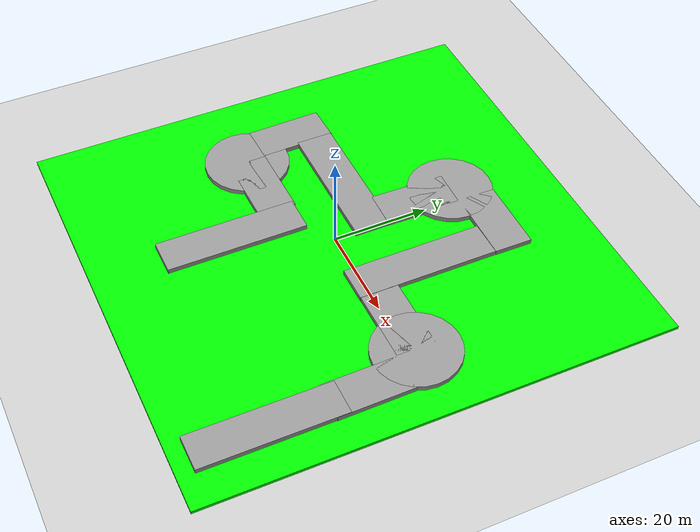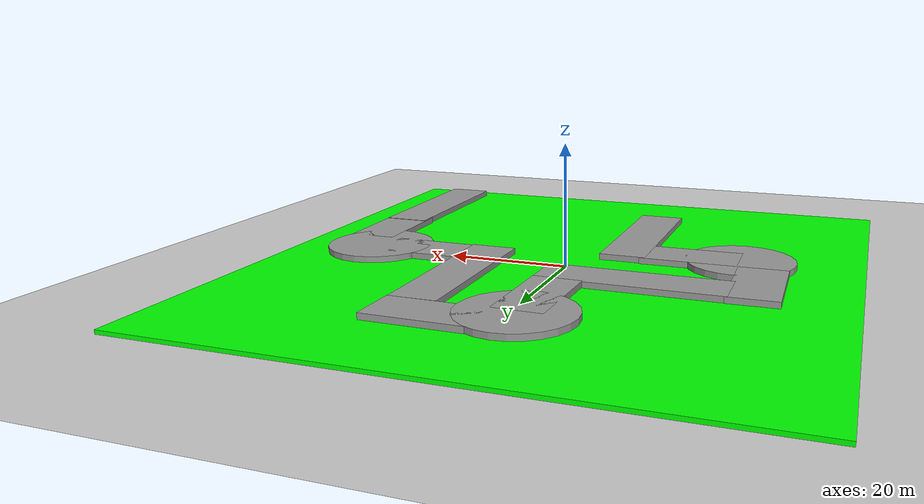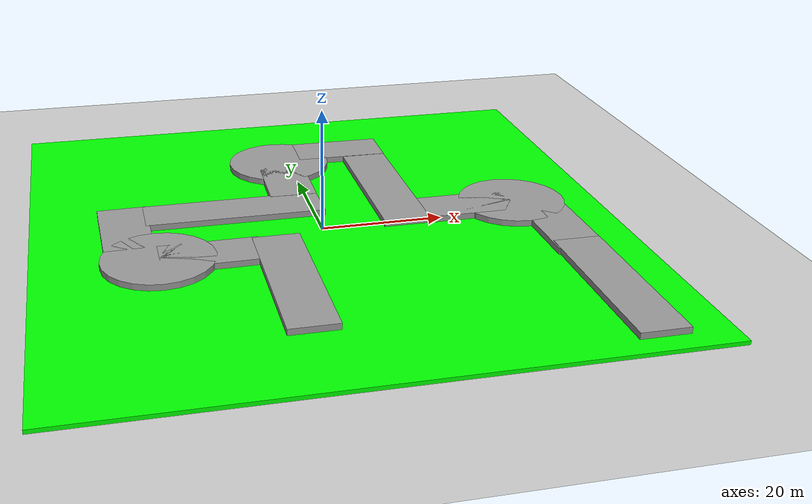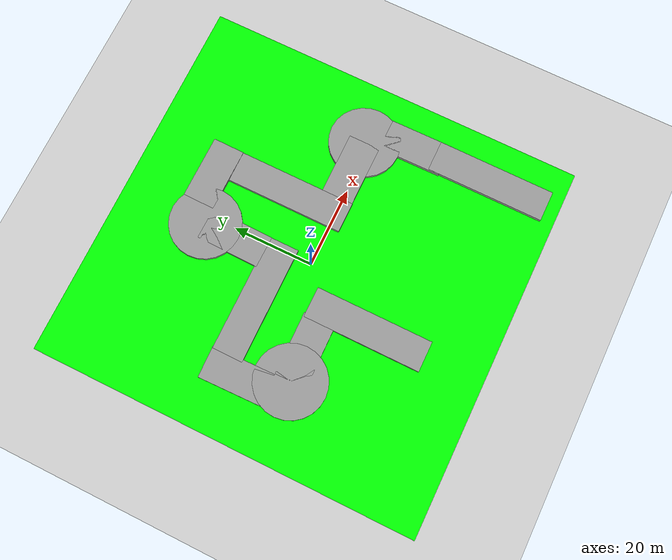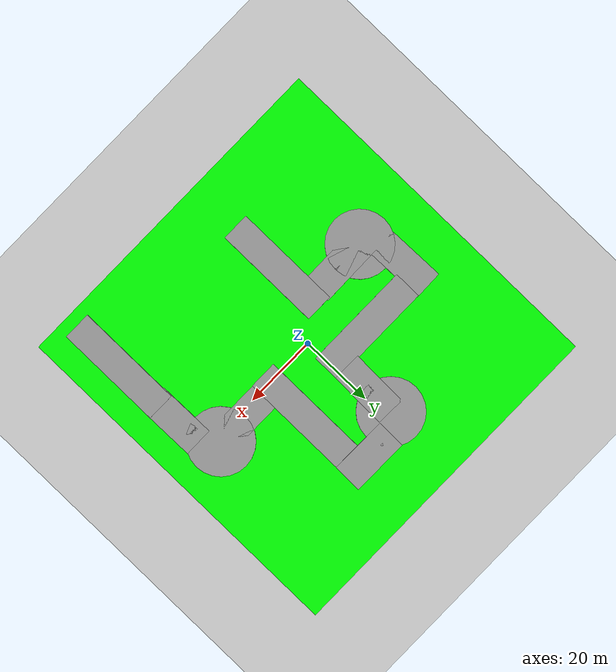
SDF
<sdf version="1.6">
 <world name="default">
  <light name="sun" type="directional">
   <pose>0 0 10 0 -0 0</pose>
   <diffuse>0.8 0.8 0.8 1</diffuse>
   <specular>0.2 0.2 0.2 1</specular>
   <attenuation>
    <range>1000</range>
    <constant>0.9</constant>
    <linear>0.01</linear>
    <quadratic>0.001</quadratic>
   </attenuation>
   <direction>-0.5 0.1 -0.9</direction>
  </light>
  <model name="ground_plane">
   <static>1</static>
   <link name="link">
    <collision name="collision">
     <geometry><plane><normal>0 0 1</normal><size>100 100</size></plane></geometry>
     <surface>
      <contact><collide_bitmask>65535</collide_bitmask></contact>
      <friction><ode><mu>100</mu><mu2>50</mu2></ode></friction>
     </surface>
    </collision>
    <visual name="visual">
     <cast_shadows>0</cast_shadows>
     <geometry><plane><normal>0 0 1</normal><size>100 100</size></plane></geometry>
     <material>
      <script><uri>file://media/materials/scripts/gazebo.material</uri><name>Gazebo/Grey</name></script>
     </material>
    </visual>
   </link>
  </model>
  <gravity>0 0 -9.8</gravity>
  <magnetic_field>6e-06 2.3e-05 -4.2e-05</magnetic_field>
  <atmosphere type="adiabatic"/>
  <physics name="default_physics" default="0" type="ode">
   <max_step_size>0.001</max_step_size>
   <real_time_factor>1</real_time_factor>
   <real_time_update_rate>1000</real_time_update_rate>
  </physics>
  <scene><ambient>0.4 0.4 0.4 1</ambient><background>0.7 0.7 0.7 1</background><shadows>1</shadows></scene>
  <audio><device>default</device></audio>
  <spherical_coordinates>
   <surface_model>EARTH_WGS84</surface_model>
   <latitude_deg>0</latitude_deg>
   <longitude_deg>0</longitude_deg>
   <elevation>0</elevation>
   <heading_deg>0</heading_deg>
  </spherical_coordinates>
  <model name="ground">
   <link name="link_0">
    <inertial>
     <mass>9071.42</mass>
     <inertia>
      <ixx>7.07029e+06</ixx>
      <ixy>0</ixy>
      <ixz>0</ixz>
      <iyy>6.6527e+06</iyy>
      <iyz>0</iyz>
      <izz>1.37215e+07</izz>
     </inertia>
    </inertial>
    <visual name="visual">
     <geometry><box><size>93.8052 96.7048 1</size></box></geometry>
     <material>
      <lighting>1</lighting>
      <script><uri>file://media/materials/scripts/gazebo.material</uri><name>Gazebo/Grey</name></script>
      <shader type="vertex"><normal_map>__default__</normal_map></shader>
      <ambient>0 1 0 0</ambient>
      <diffuse>0.7 0.7 0.7 1</diffuse>
      <specular>0.01 0.01 0.01 1</specular>
      <emissive>0 0 0 1</emissive>
     </material>
    </visual>
    <collision name="collision">
     <geometry><box><size>93.8052 96.7048 1</size></box></geometry>
     <surface>
      <friction>
       <ode><mu>1</mu><mu2>1</mu2><fdir1>0 0 0</fdir1><slip1>0</slip1><slip2>0</slip2></ode>
       <torsional>
        <coefficient>1</coefficient>
        <patch_radius>0</patch_radius>
        <surface_radius>0</surface_radius>
        <use_patch_radius>1</use_patch_radius>
        <ode><slip>0</slip></ode>
       </torsional>
      </friction>
      <bounce><restitution_coefficient>0</restitution_coefficient><threshold>1e+06</threshold></bounce>
      <contact>
       <collide_without_contact>0</collide_without_contact>
       <collide_without_contact_bitmask>1</collide_without_contact_bitmask>
       <collide_bitmask>1</collide_bitmask>
       <ode>
        <soft_cfm>0</soft_cfm>
        <soft_erp>0.2</soft_erp>
        <kp>1e+13</kp>
        <kd>1</kd>
        <max_vel>0.01</max_vel>
        <min_depth>0</min_depth>
       </ode>
       <bullet>
        <split_impulse>1</split_impulse>
        <split_impulse_penetration_threshold>-0.01</split_impulse_penetration_threshold>
        <soft_cfm>0</soft_cfm>
        <soft_erp>0.2</soft_erp>
        <kp>1e+13</kp>
        <kd>1</kd>
       </bullet>
      </contact>
     </surface>
    </collision>
   </link>
   <static>1</static>
   <pose>0.736241 0.431345 0 0 -0 0</pose>
  </model>
  <model name="NEW_TRACK">
   <link name="link_0">
    <inertial>
     <mass>222.524</mass>
     <inertia><ixx>15902.8</ixx><ixy>0</ixy><ixz>0</ixz><iyy>1090.4</iyy><iyz>0</iyz><izz>16956.1</izz></inertia>
    </inertial>
    <pose>31.8618 -28.5418 0.008428 0 -0 0</pose>
    <visual name="visual">
     <geometry><box><size>7.60273 29.2675 1</size></box></geometry>
     <material>
      <lighting>1</lighting>
      <script><uri>file://media/materials/scripts/gazebo.material</uri><name>Gazebo/Grey</name></script>
      <emissive>0 0 0 1</emissive>
     </material>
    </visual>
    <collision name="collision">
     <geometry><box><size>7.60273 29.2675 1</size></box></geometry>
     <surface>
      <friction>
       <ode><mu>1</mu><mu2>1</mu2><fdir1>0 0 0</fdir1><slip1>0</slip1><slip2>0</slip2></ode>
       <torsional>
        <coefficient>1</coefficient>
        <patch_radius>0</patch_radius>
        <surface_radius>0</surface_radius>
        <use_patch_radius>1</use_patch_radius>
        <ode><slip>0</slip></ode>
       </torsional>
      </friction>
      <bounce><restitution_coefficient>0</restitution_coefficient><threshold>1e+06</threshold></bounce>
      <contact>
       <collide_without_contact>0</collide_without_contact>
       <collide_without_contact_bitmask>1</collide_without_contact_bitmask>
       <collide_bitmask>1</collide_bitmask>
       <ode>
        <soft_cfm>0</soft_cfm>
        <soft_erp>0.2</soft_erp>
        <kp>1e+13</kp>
        <kd>1</kd>
        <max_vel>0.01</max_vel>
        <min_depth>0</min_depth>
       </ode>
       <bullet>
        <split_impulse>1</split_impulse>
        <split_impulse_penetration_threshold>-0.01</split_impulse_penetration_threshold>
        <soft_cfm>0</soft_cfm>
        <soft_erp>0.2</soft_erp>
        <kp>1e+13</kp>
        <kd>1</kd>
       </bullet>
      </contact>
     </surface>
    </collision>
   </link>
   <link name="link_0_clone">
    <inertial>
     <mass>222.524</mass>
     <inertia><ixx>15902.8</ixx><ixy>0</ixy><ixz>0</ixz><iyy>1090.4</iyy><iyz>0</iyz><izz>16956.1</izz></inertia>
    </inertial>
    <pose>8.3265 13.4462 0.008428 0 -0 0</pose>
    <visual name="visual">
     <geometry><box><size>7.60273 29.2675 1</size></box></geometry>
     <material>
      <lighting>1</lighting>
      <script><uri>file://media/materials/scripts/gazebo.material</uri><name>Gazebo/Grey</name></script>
      <shader type="pixel"/>
      <emissive>0 0 0 1</emissive>
     </material>
    </visual>
    <collision name="collision">
     <geometry><box><size>7.60273 29.2675 1</size></box></geometry>
     <surface>
      <friction>
       <ode><mu>1</mu><mu2>1</mu2><fdir1>0 0 0</fdir1><slip1>0</slip1><slip2>0</slip2></ode>
       <torsional>
        <coefficient>1</coefficient>
        <patch_radius>0</patch_radius>
        <surface_radius>0</surface_radius>
        <use_patch_radius>1</use_patch_radius>
        <ode><slip>0</slip></ode>
       </torsional>
      </friction>
      <bounce><restitution_coefficient>0</restitution_coefficient><threshold>1e+06</threshold></bounce>
      <contact>
       <collide_without_contact>0</collide_without_contact>
       <collide_without_contact_bitmask>1</collide_without_contact_bitmask>
       <collide_bitmask>1</collide_bitmask>
       <ode>
        <soft_cfm>0</soft_cfm>
        <soft_erp>0.2</soft_erp>
        <kp>1e+13</kp>
        <kd>1</kd>
        <max_vel>0.01</max_vel>
        <min_depth>0</min_depth>
       </ode>
       <bullet>
        <split_impulse>1</split_impulse>
        <split_impulse_penetration_threshold>-0.01</split_impulse_penetration_threshold>
        <soft_cfm>0</soft_cfm>
        <soft_erp>0.2</soft_erp>
        <kp>1e+13</kp>
        <kd>1</kd>
       </bullet>
      </contact>
     </surface>
    </collision>
   </link>
   <link name="link_0_clone_0">
    <inertial>
     <mass>222.524</mass>
     <inertia><ixx>15902.8</ixx><ixy>0</ixy><ixz>0</ixz><iyy>1090.4</iyy><iyz>0</iyz><izz>16956.1</izz></inertia>
    </inertial>
    <pose>-18.4829 9.17909 0.008428 0 -0 1.5707</pose>
    <visual name="visual">
     <geometry><box><size>7.60273 29.2675 1</size></box></geometry>
     <material>
      <lighting>1</lighting>
      <script><uri>file://media/materials/scripts/gazebo.material</uri><name>Gazebo/Grey</name></script>
      <shader type="vertex"><normal_map>__default__</normal_map></shader>
      <ambient>0.3 0.3 0.3 1</ambient>
      <diffuse>0.7 0.7 0.7 1</diffuse>
      <specular>0.01 0.01 0.01 1</specular>
      <emissive>0 0 0 1</emissive>
     </material>
    </visual>
    <collision name="collision">
     <geometry><box><size>7.60273 29.2675 1</size></box></geometry>
     <surface>
      <friction>
       <ode><mu>1</mu><mu2>1</mu2><fdir1>0 0 0</fdir1><slip1>0</slip1><slip2>0</slip2></ode>
       <torsional>
        <coefficient>1</coefficient>
        <patch_radius>0</patch_radius>
        <surface_radius>0</surface_radius>
        <use_patch_radius>1</use_patch_radius>
        <ode><slip>0</slip></ode>
       </torsional>
      </friction>
      <bounce><restitution_coefficient>0</restitution_coefficient><threshold>1e+06</threshold></bounce>
      <contact>
       <collide_without_contact>0</collide_without_contact>
       <collide_without_contact_bitmask>1</collide_without_contact_bitmask>
       <collide_bitmask>1</collide_bitmask>
       <ode>
        <soft_cfm>0</soft_cfm>
        <soft_erp>0.2</soft_erp>
        <kp>1e+13</kp>
        <kd>1</kd>
        <max_vel>0.01</max_vel>
        <min_depth>0</min_depth>
       </ode>
       <bullet>
        <split_impulse>1</split_impulse>
        <split_impulse_penetration_threshold>-0.01</split_impulse_penetration_threshold>
        <soft_cfm>0</soft_cfm>
        <soft_erp>0.2</soft_erp>
        <kp>1e+13</kp>
        <kd>1</kd>
       </bullet>
      </contact>
     </surface>
    </collision>
   </link>
   <link name="link_0_clone_1">
    <inertial>
     <mass>222.524</mass>
     <inertia><ixx>15902.8</ixx><ixy>0</ixy><ixz>0</ixz><iyy>1090.4</iyy><iyz>0</iyz><izz>16956.1</izz></inertia>
    </inertial>
    <pose>-13.5537 -17.3093 0.008428 0 -0 0</pose>
    <visual name="visual">
     <geometry><box><size>7.60273 29.2675 1</size></box></geometry>
     <material>
      <lighting>1</lighting>
      <script><uri>file://media/materials/scripts/gazebo.material</uri><name>Gazebo/Grey</name></script>
      <shader type="vertex"><normal_map>__default__</normal_map></shader>
      <emissive>0 0 0 1</emissive>
     </material>
    </visual>
    <collision name="collision">
     <geometry><box><size>7.60273 29.2675 1</size></box></geometry>
     <surface>
      <friction>
       <ode><mu>1</mu><mu2>1</mu2><fdir1>0 0 0</fdir1><slip1>0</slip1><slip2>0</slip2></ode>
       <torsional>
        <coefficient>1</coefficient>
        <patch_radius>0</patch_radius>
        <surface_radius>0</surface_radius>
        <use_patch_radius>1</use_patch_radius>
        <ode><slip>0</slip></ode>
       </torsional>
      </friction>
      <bounce><restitution_coefficient>0</restitution_coefficient><threshold>1e+06</threshold></bounce>
      <contact>
       <collide_without_contact>0</collide_without_contact>
       <collide_without_contact_bitmask>1</collide_without_contact_bitmask>
       <collide_bitmask>1</collide_bitmask>
       <ode>
        <soft_cfm>0</soft_cfm>
        <soft_erp>0.2</soft_erp>
        <kp>1e+13</kp>
        <kd>1</kd>
        <max_vel>0.01</max_vel>
        <min_depth>0</min_depth>
       </ode>
       <bullet>
        <split_impulse>1</split_impulse>
        <split_impulse_penetration_threshold>-0.01</split_impulse_penetration_threshold>
        <soft_cfm>0</soft_cfm>
        <soft_erp>0.2</soft_erp>
        <kp>1e+13</kp>
        <kd>1</kd>
       </bullet>
      </contact>
     </surface>
    </collision>
   </link>
   <model name="track_1">
    <link name="link_0">
     <inertial>
      <mass>123.379</mass>
      <inertia><ixx>646.144</ixx><ixy>0</ixy><ixz>0</ixz><iyy>2541.04</iyy><iyz>0</iyz><izz>3166.62</izz></inertia>
      <pose>0 15 0 0 -0 0</pose>
     </inertial>
     <pose>-6.66647 3.88767 0 0 -0 0</pose>
     <visual name="visual">
      <geometry><box><size>15.689 7.86414 1</size></box></geometry>
      <material>
       <lighting>1</lighting>
       <script><uri>file://media/materials/scripts/gazebo.material</uri><name>Gazebo/Grey</name></script>
       <shader type="vertex"><normal_map>__default__</normal_map></shader>
       <ambient>0.3 0.3 0.3 1</ambient>
       <diffuse>0.7 0.7 0.7 1</diffuse>
       <specular>0.01 0.01 0.01 1</specular>
       <emissive>0 0 0 1</emissive>
      </material>
     </visual>
     <collision name="collision">
      <geometry><box><size>15.689 7.86414 1</size></box></geometry>
      <surface>
       <friction>
        <ode><mu>1</mu><mu2>1</mu2><fdir1>0 0 0</fdir1><slip1>0</slip1><slip2>0</slip2></ode>
        <torsional>
         <coefficient>1</coefficient>
         <patch_radius>0</patch_radius>
         <surface_radius>0</surface_radius>
         <use_patch_radius>1</use_patch_radius>
         <ode><slip>0</slip></ode>
        </torsional>
       </friction>
       <bounce><restitution_coefficient>0</restitution_coefficient><threshold>1e+06</threshold></bounce>
       <contact>
        <collide_without_contact>0</collide_without_contact>
        <collide_without_contact_bitmask>1</collide_without_contact_bitmask>
        <collide_bitmask>1</collide_bitmask>
        <ode>
         <soft_cfm>0</soft_cfm>
         <soft_erp>0.2</soft_erp>
         <kp>1e+13</kp>
         <kd>1</kd>
         <max_vel>0.01</max_vel>
         <min_depth>0</min_depth>
        </ode>
        <bullet>
         <split_impulse>1</split_impulse>
         <split_impulse_penetration_threshold>-0.01</split_impulse_penetration_threshold>
         <soft_cfm>0</soft_cfm>
         <soft_erp>0.2</soft_erp>
         <kp>1e+13</kp>
         <kd>1</kd>
        </bullet>
       </contact>
      </surface>
     </collision>
    </link>
    <link name="link_0_clone">
     <inertial>
      <mass>123.379</mass>
      <inertia><ixx>646.144</ixx><ixy>0</ixy><ixz>0</ixz><iyy>2541.04</iyy><iyz>0</iyz><izz>3166.62</izz></inertia>
      <pose>0 15 0 1.5707 -0 0</pose>
     </inertial>
     <pose>5.3982 -7.81709 0 0 0 -1.55979</pose>
     <visual name="visual">
      <geometry><box><size>15.689 7.86414 1</size></box></geometry>
      <material>
       <lighting>1</lighting>
       <script><uri>file://media/materials/scripts/gazebo.material</uri><name>Gazebo/Grey</name></script>
       <shader type="vertex"><normal_map>__default__</normal_map></shader>
       <ambient>0.3 0.3 0.3 1</ambient>
       <diffuse>0.7 0.7 0.7 1</diffuse>
       <specular>0.01 0.01 0.01 1</specular>
       <emissive>0 0 0 1</emissive>
      </material>
     </visual>
     <collision name="collision">
      <geometry><box><size>15.689 7.86414 1</size></box></geometry>
      <surface>
       <friction>
        <ode><mu>1</mu><mu2>1</mu2><fdir1>0 0 0</fdir1><slip1>0</slip1><slip2>0</slip2></ode>
        <torsional>
         <coefficient>1</coefficient>
         <patch_radius>0</patch_radius>
         <surface_radius>0</surface_radius>
         <use_patch_radius>1</use_patch_radius>
         <ode><slip>0</slip></ode>
        </torsional>
       </friction>
       <bounce><restitution_coefficient>0</restitution_coefficient><threshold>1e+06</threshold></bounce>
       <contact>
        <collide_without_contact>0</collide_without_contact>
        <collide_without_contact_bitmask>1</collide_without_contact_bitmask>
        <collide_bitmask>1</collide_bitmask>
        <ode>
         <soft_cfm>0</soft_cfm>
         <soft_erp>0.2</soft_erp>
         <kp>1e+13</kp>
         <kd>1</kd>
         <max_vel>0.01</max_vel>
         <min_depth>0</min_depth>
        </ode>
        <bullet>
         <split_impulse>1</split_impulse>
         <split_impulse_penetration_threshold>-0.01</split_impulse_penetration_threshold>
         <soft_cfm>0</soft_cfm>
         <soft_erp>0.2</soft_erp>
         <kp>1e+13</kp>
         <kd>1</kd>
        </bullet>
       </contact>
      </surface>
     </collision>
    </link>
    <link name="link_3">
     <inertial>
      <mass>312.279</mass>
      <inertia><ixx>6120.81</ixx><ixy>0</ixy><ixz>0</ixz><iyy>6120.81</iyy><iyz>0</iyz><izz>12189.6</izz></inertia>
     </inertial>
     <pose>1.2682 3.92944 0 0 -0 0</pose>
     <visual name="visual">
      <geometry><cylinder><radius>8.83564</radius><length>1</length></cylinder></geometry>
      <material>
       <lighting>1</lighting>
       <script><uri>file://media/materials/scripts/gazebo.material</uri><name>Gazebo/Grey</name></script>
       <emissive>0 0 0 1</emissive>
      </material>
     </visual>
     <collision name="collision">
      <geometry><cylinder><radius>8.83564</radius><length>1</length></cylinder></geometry>
      <surface>
       <friction>
        <ode><mu>1</mu><mu2>1</mu2><fdir1>0 0 0</fdir1><slip1>0</slip1><slip2>0</slip2></ode>
        <torsional>
         <coefficient>1</coefficient>
         <patch_radius>0</patch_radius>
         <surface_radius>0</surface_radius>
         <use_patch_radius>1</use_patch_radius>
         <ode><slip>0</slip></ode>
        </torsional>
       </friction>
       <bounce><restitution_coefficient>0</restitution_coefficient><threshold>1e+06</threshold></bounce>
       <contact>
        <collide_without_contact>0</collide_without_contact>
        <collide_without_contact_bitmask>1</collide_without_contact_bitmask>
        <collide_bitmask>1</collide_bitmask>
        <ode>
         <soft_cfm>0</soft_cfm>
         <soft_erp>0.2</soft_erp>
         <kp>1e+13</kp>
         <kd>1</kd>
         <max_vel>0.01</max_vel>
         <min_depth>0</min_depth>
        </ode>
        <bullet>
         <split_impulse>1</split_impulse>
         <split_impulse_penetration_threshold>-0.01</split_impulse_penetration_threshold>
         <soft_cfm>0</soft_cfm>
         <soft_erp>0.2</soft_erp>
         <kp>1e+13</kp>
         <kd>1</kd>
        </bullet>
       </contact>
      </surface>
     </collision>
    </link>
    <joint name="link_0_JOINT_0" type="fixed">
     <parent>link_0</parent>
     <child>link_3</child>
     <physics>
      <ode><limit><cfm>0</cfm><erp>0.2</erp></limit><suspension><cfm>0</cfm><erp>0.2</erp></suspension></ode>
     </physics>
    </joint>
    <joint name="link_0_clone_JOINT_1" type="fixed">
     <parent>link_0_clone</parent>
     <child>link_3</child>
     <physics>
      <ode><limit><cfm>0</cfm><erp>0.2</erp></limit><suspension><cfm>0</cfm><erp>0.2</erp></suspension></ode>
     </physics>
    </joint>
    <static>0</static>
    <pose>26.3044 -1.05509 -0.056459 0 -0 0</pose>
   </model>
   <model name="track_1_0">
    <link name="link_0">
     <inertial>
      <mass>123.379</mass>
      <inertia><ixx>646.144</ixx><ixy>0</ixy><ixz>0</ixz><iyy>2541.04</iyy><iyz>0</iyz><izz>3166.62</izz></inertia>
      <pose>0 15 0 0 -0 0</pose>
     </inertial>
     <pose>-6.66647 3.88767 0 0 -0 0</pose>
     <visual name="visual">
      <geometry><box><size>15.689 7.86414 1</size></box></geometry>
      <material>
       <lighting>1</lighting>
       <script><uri>file://media/materials/scripts/gazebo.material</uri><name>Gazebo/Grey</name></script>
       <shader type="vertex"><normal_map>__default__</normal_map></shader>
       <ambient>0.3 0.3 0.3 1</ambient>
       <diffuse>0.7 0.7 0.7 1</diffuse>
       <specular>0.01 0.01 0.01 1</specular>
       <emissive>0 0 0 1</emissive>
      </material>
     </visual>
     <collision name="collision">
      <geometry><box><size>15.689 7.86414 1</size></box></geometry>
      <surface>
       <friction>
        <ode><mu>1</mu><mu2>1</mu2><fdir1>0 0 0</fdir1><slip1>0</slip1><slip2>0</slip2></ode>
        <torsional>
         <coefficient>1</coefficient>
         <patch_radius>0</patch_radius>
         <surface_radius>0</surface_radius>
         <use_patch_radius>1</use_patch_radius>
         <ode><slip>0</slip></ode>
        </torsional>
       </friction>
       <bounce><restitution_coefficient>0</restitution_coefficient><threshold>1e+06</threshold></bounce>
       <contact>
        <collide_without_contact>0</collide_without_contact>
        <collide_without_contact_bitmask>1</collide_without_contact_bitmask>
        <collide_bitmask>1</collide_bitmask>
        <ode>
         <soft_cfm>0</soft_cfm>
         <soft_erp>0.2</soft_erp>
         <kp>1e+13</kp>
         <kd>1</kd>
         <max_vel>0.01</max_vel>
         <min_depth>0</min_depth>
        </ode>
        <bullet>
         <split_impulse>1</split_impulse>
         <split_impulse_penetration_threshold>-0.01</split_impulse_penetration_threshold>
         <soft_cfm>0</soft_cfm>
         <soft_erp>0.2</soft_erp>
         <kp>1e+13</kp>
         <kd>1</kd>
        </bullet>
       </contact>
      </surface>
     </collision>
    </link>
    <link name="link_0_clone">
     <inertial>
      <mass>123.379</mass>
      <inertia><ixx>646.144</ixx><ixy>0</ixy><ixz>0</ixz><iyy>2541.04</iyy><iyz>0</iyz><izz>3166.62</izz></inertia>
      <pose>0 15 0 1.5707 -0 0</pose>
     </inertial>
     <pose>5.3982 -7.81709 0 0 0 -1.55979</pose>
     <visual name="visual">
      <geometry><box><size>15.689 7.86414 1</size></box></geometry>
      <material>
       <lighting>1</lighting>
       <script><uri>file://media/materials/scripts/gazebo.material</uri><name>Gazebo/Grey</name></script>
       <shader type="vertex"><normal_map>__default__</normal_map></shader>
       <ambient>0.3 0.3 0.3 1</ambient>
       <diffuse>0.7 0.7 0.7 1</diffuse>
       <specular>0.01 0.01 0.01 1</specular>
       <emissive>0 0 0 1</emissive>
      </material>
     </visual>
     <collision name="collision">
      <geometry><box><size>15.689 7.86414 1</size></box></geometry>
      <surface>
       <friction>
        <ode><mu>1</mu><mu2>1</mu2><fdir1>0 0 0</fdir1><slip1>0</slip1><slip2>0</slip2></ode>
        <torsional>
         <coefficient>1</coefficient>
         <patch_radius>0</patch_radius>
         <surface_radius>0</surface_radius>
         <use_patch_radius>1</use_patch_radius>
         <ode><slip>0</slip></ode>
        </torsional>
       </friction>
       <bounce><restitution_coefficient>0</restitution_coefficient><threshold>1e+06</threshold></bounce>
       <contact>
        <collide_without_contact>0</collide_without_contact>
        <collide_without_contact_bitmask>1</collide_without_contact_bitmask>
        <collide_bitmask>1</collide_bitmask>
        <ode>
         <soft_cfm>0</soft_cfm>
         <soft_erp>0.2</soft_erp>
         <kp>1e+13</kp>
         <kd>1</kd>
         <max_vel>0.01</max_vel>
         <min_depth>0</min_depth>
        </ode>
        <bullet>
         <split_impulse>1</split_impulse>
         <split_impulse_penetration_threshold>-0.01</split_impulse_penetration_threshold>
         <soft_cfm>0</soft_cfm>
         <soft_erp>0.2</soft_erp>
         <kp>1e+13</kp>
         <kd>1</kd>
        </bullet>
       </contact>
      </surface>
     </collision>
    </link>
    <link name="link_3">
     <inertial>
      <mass>312.279</mass>
      <inertia><ixx>6120.81</ixx><ixy>0</ixy><ixz>0</ixz><iyy>6120.81</iyy><iyz>0</iyz><izz>12189.6</izz></inertia>
     </inertial>
     <pose>1.2682 3.92944 0 0 -0 0</pose>
     <visual name="visual">
      <geometry><cylinder><radius>8.83564</radius><length>1</length></cylinder></geometry>
      <material>
       <lighting>1</lighting>
       <script><uri>file://media/materials/scripts/gazebo.material</uri><name>Gazebo/Grey</name></script>
       <emissive>0 0 0 1</emissive>
      </material>
     </visual>
     <collision name="collision">
      <geometry><cylinder><radius>8.83564</radius><length>1</length></cylinder></geometry>
      <surface>
       <friction>
        <ode><mu>1</mu><mu2>1</mu2><fdir1>0 0 0</fdir1><slip1>0</slip1><slip2>0</slip2></ode>
        <torsional>
         <coefficient>1</coefficient>
         <patch_radius>0</patch_radius>
         <surface_radius>0</surface_radius>
         <use_patch_radius>1</use_patch_radius>
         <ode><slip>0</slip></ode>
        </torsional>
       </friction>
       <bounce><restitution_coefficient>0</restitution_coefficient><threshold>1e+06</threshold></bounce>
       <contact>
        <collide_without_contact>0</collide_without_contact>
        <collide_without_contact_bitmask>1</collide_without_contact_bitmask>
        <collide_bitmask>1</collide_bitmask>
        <ode>
         <soft_cfm>0</soft_cfm>
         <soft_erp>0.2</soft_erp>
         <kp>1e+13</kp>
         <kd>1</kd>
         <max_vel>0.01</max_vel>
         <min_depth>0</min_depth>
        </ode>
        <bullet>
         <split_impulse>1</split_impulse>
         <split_impulse_penetration_threshold>-0.01</split_impulse_penetration_threshold>
         <soft_cfm>0</soft_cfm>
         <soft_erp>0.2</soft_erp>
         <kp>1e+13</kp>
         <kd>1</kd>
        </bullet>
       </contact>
      </surface>
     </collision>
    </link>
    <joint name="link_0_JOINT_0" type="fixed">
     <parent>link_0</parent>
     <child>link_3</child>
     <physics>
      <ode><limit><cfm>0</cfm><erp>0.2</erp></limit><suspension><cfm>0</cfm><erp>0.2</erp></suspension></ode>
     </physics>
    </joint>
    <joint name="link_0_clone_JOINT_1" type="fixed">
     <parent>link_0_clone</parent>
     <child>link_3</child>
     <physics>
      <ode><limit><cfm>0</cfm><erp>0.2</erp></limit><suspension><cfm>0</cfm><erp>0.2</erp></suspension></ode>
     </physics>
    </joint>
    <static>0</static>
    <pose>-3.53672 26.8902 0.020301 0 -0 1.54875</pose>
   </model>
   <model name="track_1_1">
    <link name="link_0">
     <inertial>
      <mass>123.379</mass>
      <inertia><ixx>646.144</ixx><ixy>0</ixy><ixz>0</ixz><iyy>2541.04</iyy><iyz>0</iyz><izz>3166.62</izz></inertia>
      <pose>0 15 0 0 -0 0</pose>
     </inertial>
     <pose>-6.66647 3.88767 0 0 -0 0</pose>
     <visual name="visual">
      <geometry><box><size>15.689 7.86414 1</size></box></geometry>
      <material>
       <lighting>1</lighting>
       <script><uri>file://media/materials/scripts/gazebo.material</uri><name>Gazebo/Grey</name></script>
       <shader type="vertex"><normal_map>__default__</normal_map></shader>
       <ambient>0.3 0.3 0.3 1</ambient>
       <diffuse>0.7 0.7 0.7 1</diffuse>
       <specular>0.01 0.01 0.01 1</specular>
       <emissive>0 0 0 1</emissive>
      </material>
     </visual>
     <collision name="collision">
      <geometry><box><size>15.689 7.86414 1</size></box></geometry>
      <surface>
       <friction>
        <ode><mu>1</mu><mu2>1</mu2><fdir1>0 0 0</fdir1><slip1>0</slip1><slip2>0</slip2></ode>
        <torsional>
         <coefficient>1</coefficient>
         <patch_radius>0</patch_radius>
         <surface_radius>0</surface_radius>
         <use_patch_radius>1</use_patch_radius>
         <ode><slip>0</slip></ode>
        </torsional>
       </friction>
       <bounce><restitution_coefficient>0</restitution_coefficient><threshold>1e+06</threshold></bounce>
       <contact>
        <collide_without_contact>0</collide_without_contact>
        <collide_without_contact_bitmask>1</collide_without_contact_bitmask>
        <collide_bitmask>1</collide_bitmask>
        <ode>
         <soft_cfm>0</soft_cfm>
         <soft_erp>0.2</soft_erp>
         <kp>1e+13</kp>
         <kd>1</kd>
         <max_vel>0.01</max_vel>
         <min_depth>0</min_depth>
        </ode>
        <bullet>
         <split_impulse>1</split_impulse>
         <split_impulse_penetration_threshold>-0.01</split_impulse_penetration_threshold>
         <soft_cfm>0</soft_cfm>
         <soft_erp>0.2</soft_erp>
         <kp>1e+13</kp>
         <kd>1</kd>
        </bullet>
       </contact>
      </surface>
     </collision>
    </link>
    <link name="link_0_clone">
     <inertial>
      <mass>123.379</mass>
      <inertia><ixx>646.144</ixx><ixy>0</ixy><ixz>0</ixz><iyy>2541.04</iyy><iyz>0</iyz><izz>3166.62</izz></inertia>
      <pose>0 15 0 1.5707 -0 0</pose>
     </inertial>
     <pose>5.3982 -7.81709 0 0 0 -1.55979</pose>
     <visual name="visual">
      <geometry><box><size>15.689 7.86414 1</size></box></geometry>
      <material>
       <lighting>1</lighting>
       <script><uri>file://media/materials/scripts/gazebo.material</uri><name>Gazebo/Grey</name></script>
       <shader type="vertex"><normal_map>__default__</normal_map></shader>
       <ambient>0.3 0.3 0.3 1</ambient>
       <diffuse>0.7 0.7 0.7 1</diffuse>
       <specular>0.01 0.01 0.01 1</specular>
       <emissive>0 0 0 1</emissive>
      </material>
     </visual>
     <collision name="collision">
      <geometry><box><size>15.689 7.86414 1</size></box></geometry>
      <surface>
       <friction>
        <ode><mu>1</mu><mu2>1</mu2><fdir1>0 0 0</fdir1><slip1>0</slip1><slip2>0</slip2></ode>
        <torsional>
         <coefficient>1</coefficient>
         <patch_radius>0</patch_radius>
         <surface_radius>0</surface_radius>
         <use_patch_radius>1</use_patch_radius>
         <ode><slip>0</slip></ode>
        </torsional>
       </friction>
       <bounce><restitution_coefficient>0</restitution_coefficient><threshold>1e+06</threshold></bounce>
       <contact>
        <collide_without_contact>0</collide_without_contact>
        <collide_without_contact_bitmask>1</collide_without_contact_bitmask>
        <collide_bitmask>1</collide_bitmask>
        <ode>
         <soft_cfm>0</soft_cfm>
         <soft_erp>0.2</soft_erp>
         <kp>1e+13</kp>
         <kd>1</kd>
         <max_vel>0.01</max_vel>
         <min_depth>0</min_depth>
        </ode>
        <bullet>
         <split_impulse>1</split_impulse>
         <split_impulse_penetration_threshold>-0.01</split_impulse_penetration_threshold>
         <soft_cfm>0</soft_cfm>
         <soft_erp>0.2</soft_erp>
         <kp>1e+13</kp>
         <kd>1</kd>
        </bullet>
       </contact>
      </surface>
     </collision>
    </link>
    <link name="link_3">
     <inertial>
      <mass>312.279</mass>
      <inertia><ixx>6120.81</ixx><ixy>0</ixy><ixz>0</ixz><iyy>6120.81</iyy><iyz>0</iyz><izz>12189.6</izz></inertia>
     </inertial>
     <pose>1.2682 3.92944 0 0 -0 0</pose>
     <visual name="visual">
      <geometry><cylinder><radius>8.83564</radius><length>1</length></cylinder></geometry>
      <material>
       <lighting>1</lighting>
       <script><uri>file://media/materials/scripts/gazebo.material</uri><name>Gazebo/Grey</name></script>
       <emissive>0 0 0 1</emissive>
      </material>
     </visual>
     <collision name="collision">
      <geometry><cylinder><radius>8.83564</radius><length>1</length></cylinder></geometry>
      <surface>
       <friction>
        <ode><mu>1</mu><mu2>1</mu2><fdir1>0 0 0</fdir1><slip1>0</slip1><slip2>0</slip2></ode>
        <torsional>
         <coefficient>1</coefficient>
         <patch_radius>0</patch_radius>
         <surface_radius>0</surface_radius>
         <use_patch_radius>1</use_patch_radius>
         <ode><slip>0</slip></ode>
        </torsional>
       </friction>
       <bounce><restitution_coefficient>0</restitution_coefficient><threshold>1e+06</threshold></bounce>
       <contact>
        <collide_without_contact>0</collide_without_contact>
        <collide_without_contact_bitmask>1</collide_without_contact_bitmask>
        <collide_bitmask>1</collide_bitmask>
        <ode>
         <soft_cfm>0</soft_cfm>
         <soft_erp>0.2</soft_erp>
         <kp>1e+13</kp>
         <kd>1</kd>
         <max_vel>0.01</max_vel>
         <min_depth>0</min_depth>
        </ode>
        <bullet>
         <split_impulse>1</split_impulse>
         <split_impulse_penetration_threshold>-0.01</split_impulse_penetration_threshold>
         <soft_cfm>0</soft_cfm>
         <soft_erp>0.2</soft_erp>
         <kp>1e+13</kp>
         <kd>1</kd>
        </bullet>
       </contact>
      </surface>
     </collision>
    </link>
    <joint name="link_0_JOINT_0" type="fixed">
     <parent>link_0</parent>
     <child>link_3</child>
     <physics>
      <ode><limit><cfm>0</cfm><erp>0.2</erp></limit><suspension><cfm>0</cfm><erp>0.2</erp></suspension></ode>
     </physics>
    </joint>
    <joint name="link_0_clone_JOINT_1" type="fixed">
     <parent>link_0_clone</parent>
     <child>link_3</child>
     <physics>
      <ode><limit><cfm>0</cfm><erp>0.2</erp></limit><suspension><cfm>0</cfm><erp>0.2</erp></suspension></ode>
     </physics>
    </joint>
    <static>0</static>
    <pose>-30.9194 -2.60939 0.002447 0 0 -3.1296</pose>
   </model>
   <joint name="link_0_JOINT_0" type="fixed">
    <parent>link_0</parent>
    <child>track_1::link_0_clone</child>
    <physics>
     <ode><limit><cfm>0</cfm><erp>0.2</erp></limit><suspension><cfm>0</cfm><erp>0.2</erp></suspension></ode>
    </physics>
   </joint>
   <joint name="link_0_clone_0_JOINT_4" type="fixed">
    <parent>link_0_clone_0</parent>
    <child>track_1_1::link_0_clone</child>
    <physics>
     <ode><limit><cfm>0</cfm><erp>0.2</erp></limit><suspension><cfm>0</cfm><erp>0.2</erp></suspension></ode>
    </physics>
   </joint>
   <joint name="link_0_clone_JOINT_2" type="fixed">
    <parent>link_0_clone</parent>
    <child>track_1_0::link_0_clone</child>
    <physics>
     <ode><limit><cfm>0</cfm><erp>0.2</erp></limit><suspension><cfm>0</cfm><erp>0.2</erp></suspension></ode>
    </physics>
   </joint>
   <joint name="link_0_JOINT_1" type="fixed">
    <parent>track_1::link_0</parent>
    <child>link_0_clone</child>
    <physics>
     <ode><limit><cfm>0</cfm><erp>0.2</erp></limit><suspension><cfm>0</cfm><erp>0.2</erp></suspension></ode>
    </physics>
   </joint>
   <joint name="link_0_JOINT_3" type="fixed">
    <parent>track_1_0::link_0</parent>
    <child>link_0_clone_0</child>
    <physics>
     <ode><limit><cfm>0</cfm><erp>0.2</erp></limit><suspension><cfm>0</cfm><erp>0.2</erp></suspension></ode>
    </physics>
   </joint>
   <joint name="link_0_JOINT_5" type="fixed">
    <parent>track_1_1::link_0</parent>
    <child>link_0_clone_1</child>
    <physics>
     <ode><limit><cfm>0</cfm><erp>0.2</erp></limit><suspension><cfm>0</cfm><erp>0.2</erp></suspension></ode>
    </physics>
   </joint>
   <static>0</static>
   <pose>5.21281 -1.42503 1.04314 -3.5e-05 -0.0011 -1.8e-05</pose>
  </model>
 </world>
</sdf>
